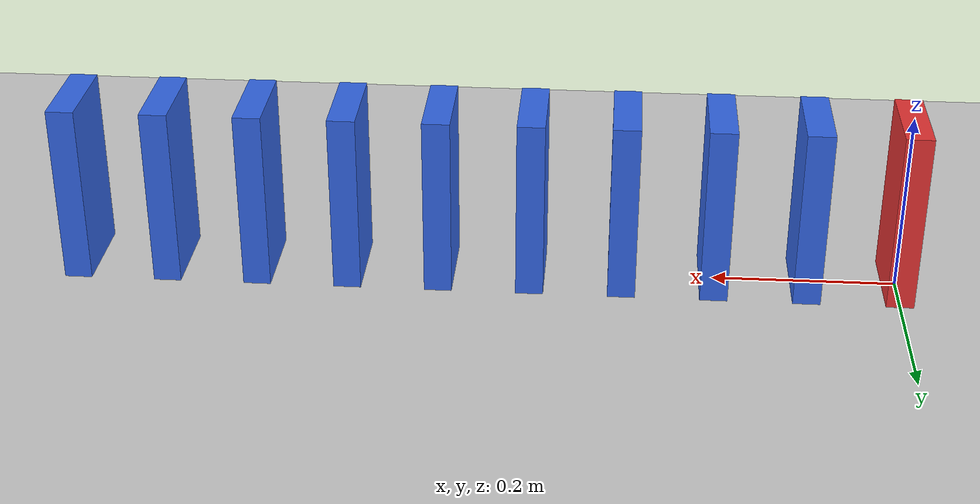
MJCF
<mujoco model="domino_row">
  <option timestep="0.002"/>
  <worldbody>
    <light name="sun" pos="0.5 -1 2" dir="0 0.5 -1" directional="true"/>
    <geom name="floor" type="plane" pos="0 0 0" size="3 3 0.1" rgba="0.8 0.8 0.8 1" friction="0.8 0.005 0.0001"/>
    <body name="domino1" pos="0.0 0 0.1">
      <freejoint name="j1"/>
      <geom name="d1" type="box" size="0.015 0.05 0.1" rgba="0.9 0.2 0.2 1" friction="0.6 0.005 0.0001"/>
    </body>
    <body name="domino2" pos="0.1 0 0.1">
      <freejoint name="j2"/>
      <geom name="d2" type="box" size="0.015 0.05 0.1" rgba="0.2 0.4 0.9 1" friction="0.6 0.005 0.0001"/>
    </body>
    <body name="domino3" pos="0.2 0 0.1">
      <freejoint name="j3"/>
      <geom name="d3" type="box" size="0.015 0.05 0.1" rgba="0.2 0.4 0.9 1" friction="0.6 0.005 0.0001"/>
    </body>
    <body name="domino4" pos="0.3 0 0.1">
      <freejoint name="j4"/>
      <geom name="d4" type="box" size="0.015 0.05 0.1" rgba="0.2 0.4 0.9 1" friction="0.6 0.005 0.0001"/>
    </body>
    <body name="domino5" pos="0.4 0 0.1">
      <freejoint name="j5"/>
      <geom name="d5" type="box" size="0.015 0.05 0.1" rgba="0.2 0.4 0.9 1" friction="0.6 0.005 0.0001"/>
    </body>
    <body name="domino6" pos="0.5 0 0.1">
      <freejoint name="j6"/>
      <geom name="d6" type="box" size="0.015 0.05 0.1" rgba="0.2 0.4 0.9 1" friction="0.6 0.005 0.0001"/>
    </body>
    <body name="domino7" pos="0.6 0 0.1">
      <freejoint name="j7"/>
      <geom name="d7" type="box" size="0.015 0.05 0.1" rgba="0.2 0.4 0.9 1" friction="0.6 0.005 0.0001"/>
    </body>
    <body name="domino8" pos="0.7 0 0.1">
      <freejoint name="j8"/>
      <geom name="d8" type="box" size="0.015 0.05 0.1" rgba="0.2 0.4 0.9 1" friction="0.6 0.005 0.0001"/>
    </body>
    <body name="domino9" pos="0.8 0 0.1">
      <freejoint name="j9"/>
      <geom name="d9" type="box" size="0.015 0.05 0.1" rgba="0.2 0.4 0.9 1" friction="0.6 0.005 0.0001"/>
    </body>
    <body name="domino10" pos="0.9 0 0.1">
      <freejoint name="j10"/>
      <geom name="d10" type="box" size="0.015 0.05 0.1" rgba="0.2 0.4 0.9 1" friction="0.6 0.005 0.0001"/>
    </body>
  </worldbody>
  <keyframe>
    <key name="start" qpos="0 0 0.1 1 0 0 0 0.1 0 0.1 1 0 0 0 0.2 0 0.1 1 0 0 0 0.3 0 0.1 1 0 0 0 0.4 0 0.1 1 0 0 0 0.5 0 0.1 1 0 0 0 0.6 0 0.1 1 0 0 0 0.7 0 0.1 1 0 0 0 0.8 0 0.1 1 0 0 0 0.9 0 0.1 1 0 0 0" qvel="0.3 0 0.045 0 3 0 0 0 0 0 0 0 0 0 0 0 0 0 0 0 0 0 0 0 0 0 0 0 0 0 0 0 0 0 0 0 0 0 0 0 0 0 0 0 0 0 0 0 0 0 0 0 0 0 0 0 0 0 0 0"/>
  </keyframe>
</mujoco>
